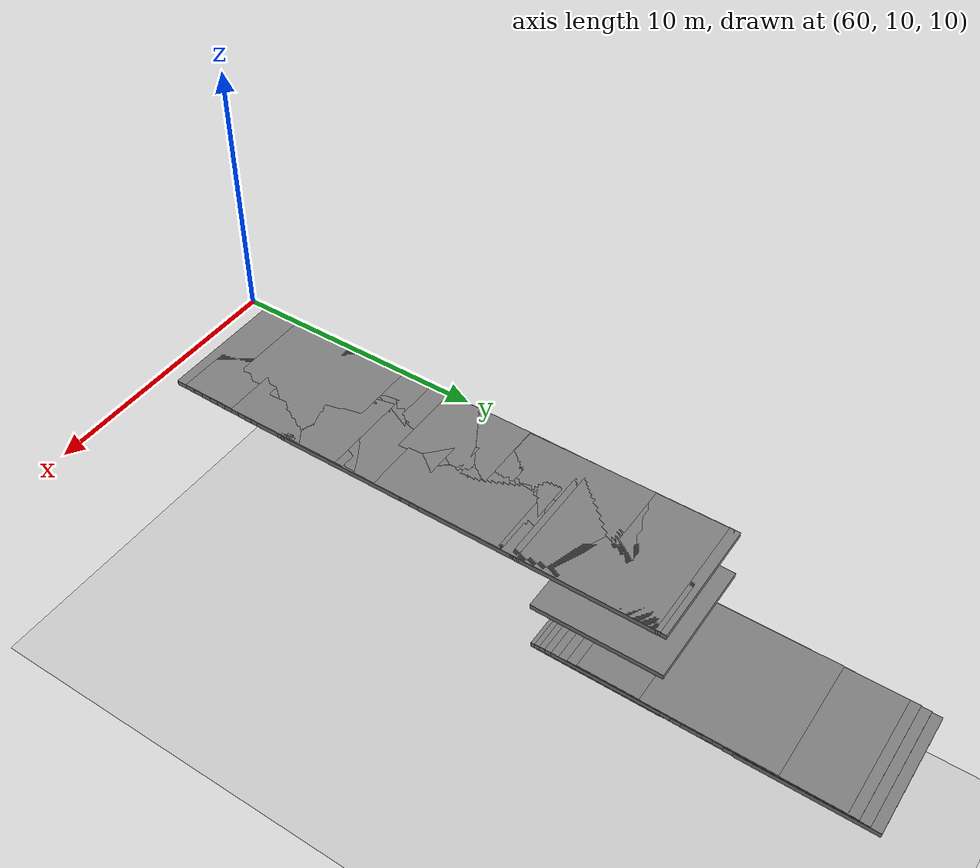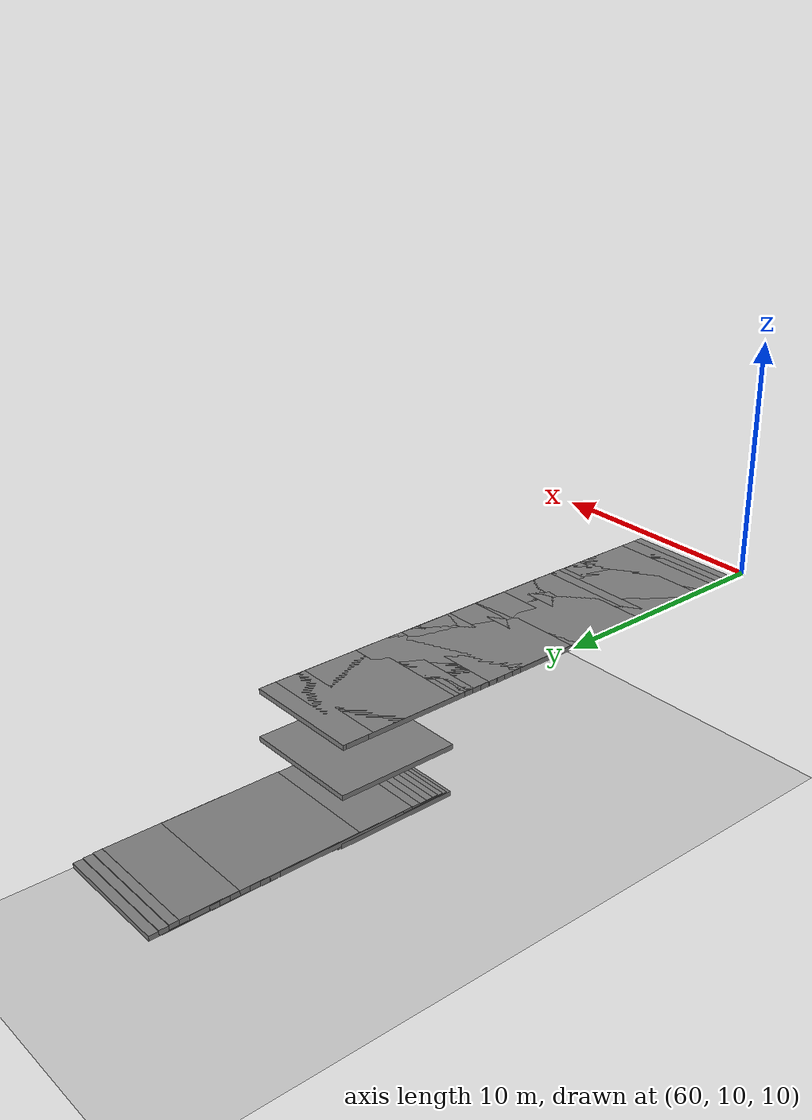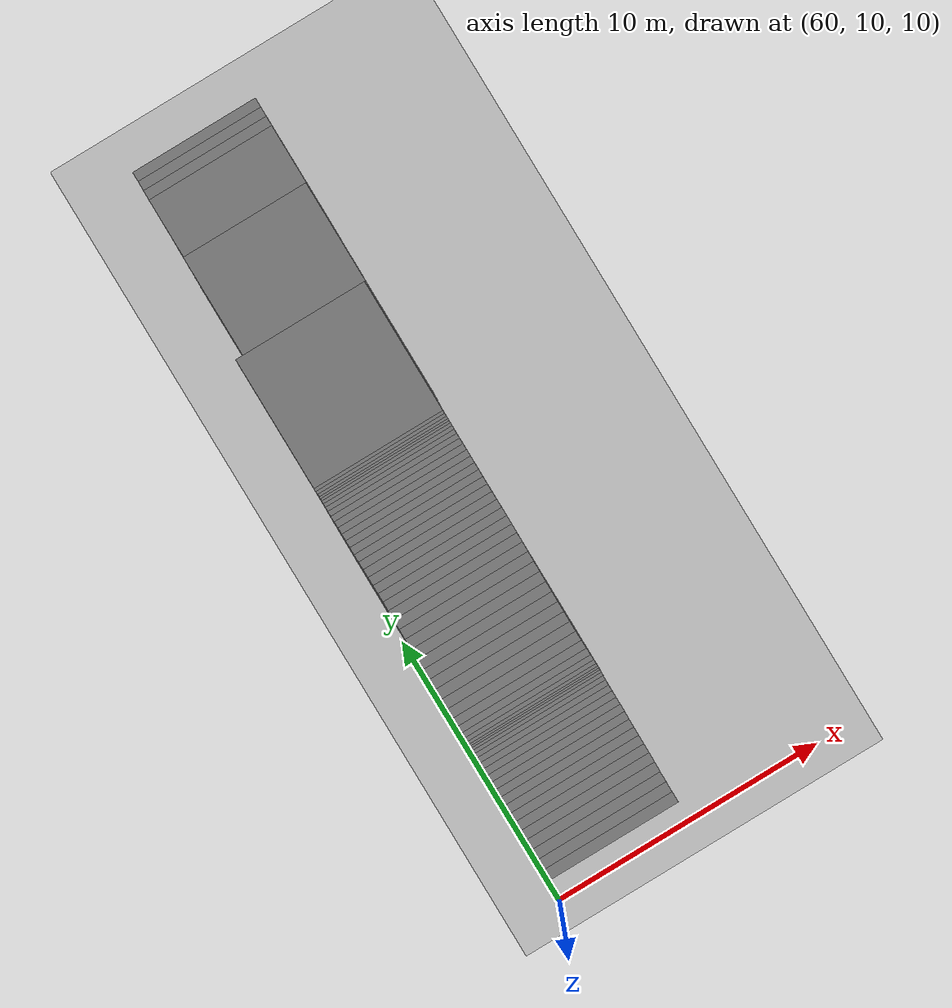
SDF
<sdf version="1.6">
 <world name="default">
  <include><uri>model://sun</uri></include>
  <include><uri>model://ground_plane</uri></include>
  <model name="road_segment_403">
   <static>true</static>
   <link name="link">
    <visual name="visual">
     <geometry><box><size>5.0 5.0 0.2</size></box></geometry>
     <material><ambient>0.5 0.5 0.5 1</ambient><diffuse>0.5 0.5 0.5 1</diffuse></material>
     <pose>62.696222600051314 36.22027457710089 6.080920352505025 0 0 0</pose>
    </visual>
    <collision name="collision">
     <geometry><box><size>5.0 5.0 0.2</size></box></geometry>
     <pose>62.696222600051314 36.22027457710089 6.080920352505025 0 0 0</pose>
    </collision>
   </link>
  </model>
  <model name="road_segment_404">
   <static>true</static>
   <link name="link">
    <visual name="visual">
     <geometry><box><size>5.0 5.0 0.2</size></box></geometry>
     <material><ambient>0.5 0.5 0.5 1</ambient><diffuse>0.5 0.5 0.5 1</diffuse></material>
     <pose>62.69449933366165 35.84456974748646 6.111365594293305 0 0 0</pose>
    </visual>
    <collision name="collision">
     <geometry><box><size>5.0 5.0 0.2</size></box></geometry>
     <pose>62.69449933366165 35.84456974748646 6.111365594293305 0 0 0</pose>
    </collision>
   </link>
  </model>
  <model name="road_segment_405">
   <static>true</static>
   <link name="link">
    <visual name="visual">
     <geometry><box><size>5.0 5.0 0.2</size></box></geometry>
     <material><ambient>0.5 0.5 0.5 1</ambient><diffuse>0.5 0.5 0.5 1</diffuse></material>
     <pose>62.69001884104202 35.469682111627336 6.141333887124067 0 0 0</pose>
    </visual>
    <collision name="collision">
     <geometry><box><size>5.0 5.0 0.2</size></box></geometry>
     <pose>62.69001884104202 35.469682111627336 6.141333887124067 0 0 0</pose>
    </collision>
   </link>
  </model>
  <model name="road_segment_406">
   <static>true</static>
   <link name="link">
    <visual name="visual">
     <geometry><box><size>5.0 5.0 0.2</size></box></geometry>
     <material><ambient>0.5 0.5 0.5 1</ambient><diffuse>0.5 0.5 0.5 1</diffuse></material>
     <pose>62.68484904185672 35.09254719294022 6.145686046361426 0 0 0</pose>
    </visual>
    <collision name="collision">
     <geometry><box><size>5.0 5.0 0.2</size></box></geometry>
     <pose>62.68484904185672 35.09254719294022 6.145686046361426 0 0 0</pose>
    </collision>
   </link>
  </model>
  <model name="road_segment_407">
   <static>true</static>
   <link name="link">
    <visual name="visual">
     <geometry><box><size>5.0 5.0 0.2</size></box></geometry>
     <material><ambient>0.5 0.5 0.5 1</ambient><diffuse>0.5 0.5 0.5 1</diffuse></material>
     <pose>62.68324065988651 34.71234779766618 6.130344188227905 0 0 0</pose>
    </visual>
    <collision name="collision">
     <geometry><box><size>5.0 5.0 0.2</size></box></geometry>
     <pose>62.68324065988651 34.71234779766618 6.130344188227905 0 0 0</pose>
    </collision>
   </link>
  </model>
  <model name="road_segment_408">
   <static>true</static>
   <link name="link">
    <visual name="visual">
     <geometry><box><size>5.0 5.0 0.2</size></box></geometry>
     <material><ambient>0.5 0.5 0.5 1</ambient><diffuse>0.5 0.5 0.5 1</diffuse></material>
     <pose>62.68335554432228 34.33010541799482 6.111077437631471 0 0 0</pose>
    </visual>
    <collision name="collision">
     <geometry><box><size>5.0 5.0 0.2</size></box></geometry>
     <pose>62.68335554432228 34.33010541799482 6.111077437631471 0 0 0</pose>
    </collision>
   </link>
  </model>
  <model name="road_segment_409">
   <static>true</static>
   <link name="link">
    <visual name="visual">
     <geometry><box><size>5.0 5.0 0.2</size></box></geometry>
     <material><ambient>0.5 0.5 0.5 1</ambient><diffuse>0.5 0.5 0.5 1</diffuse></material>
     <pose>62.680942971366974 33.946024352374934 6.11159413233545 0 0 0</pose>
    </visual>
    <collision name="collision">
     <geometry><box><size>5.0 5.0 0.2</size></box></geometry>
     <pose>62.680942971366974 33.946024352374934 6.11159413233545 0 0 0</pose>
    </collision>
   </link>
  </model>
  <model name="road_segment_410">
   <static>true</static>
   <link name="link">
    <visual name="visual">
     <geometry><box><size>5.0 5.0 0.2</size></box></geometry>
     <material><ambient>0.5 0.5 0.5 1</ambient><diffuse>0.5 0.5 0.5 1</diffuse></material>
     <pose>62.67531363447124 33.55867451173022 6.12519711406135 0 0 0</pose>
    </visual>
    <collision name="collision">
     <geometry><box><size>5.0 5.0 0.2</size></box></geometry>
     <pose>62.67531363447124 33.55867451173022 6.12519711406135 0 0 0</pose>
    </collision>
   </link>
  </model>
  <model name="road_segment_411">
   <static>true</static>
   <link name="link">
    <visual name="visual">
     <geometry><box><size>5.0 5.0 0.2</size></box></geometry>
     <material><ambient>0.5 0.5 0.5 1</ambient><diffuse>0.5 0.5 0.5 1</diffuse></material>
     <pose>62.67106291070682 33.16805589605339 6.133881559662837 0 0 0</pose>
    </visual>
    <collision name="collision">
     <geometry><box><size>5.0 5.0 0.2</size></box></geometry>
     <pose>62.67106291070682 33.16805589605339 6.133881559662837 0 0 0</pose>
    </collision>
   </link>
  </model>
  <model name="road_segment_412">
   <static>true</static>
   <link name="link">
    <visual name="visual">
     <geometry><box><size>5.0 5.0 0.2</size></box></geometry>
     <material><ambient>0.5 0.5 0.5 1</ambient><diffuse>0.5 0.5 0.5 1</diffuse></material>
     <pose>62.66922475988139 32.77314701315488 6.146063630952795 0 0 0</pose>
    </visual>
    <collision name="collision">
     <geometry><box><size>5.0 5.0 0.2</size></box></geometry>
     <pose>62.66922475988139 32.77314701315488 6.146063630952795 0 0 0</pose>
    </collision>
   </link>
  </model>
  <model name="road_segment_413">
   <static>true</static>
   <link name="link">
    <visual name="visual">
     <geometry><box><size>5.0 5.0 0.2</size></box></geometry>
     <material><ambient>0.5 0.5 0.5 1</ambient><diffuse>0.5 0.5 0.5 1</diffuse></material>
     <pose>62.66462938282598 32.37599084742838 6.13650477892919 0 0 0</pose>
    </visual>
    <collision name="collision">
     <geometry><box><size>5.0 5.0 0.2</size></box></geometry>
     <pose>62.66462938282598 32.37599084742838 6.13650477892919 0 0 0</pose>
    </collision>
   </link>
  </model>
  <model name="road_segment_414">
   <static>true</static>
   <link name="link">
    <visual name="visual">
     <geometry><box><size>5.0 5.0 0.2</size></box></geometry>
     <material><ambient>0.5 0.5 0.5 1</ambient><diffuse>0.5 0.5 0.5 1</diffuse></material>
     <pose>62.65670235742703 31.977404592629206 6.128217790792302 0 0 0</pose>
    </visual>
    <collision name="collision">
     <geometry><box><size>5.0 5.0 0.2</size></box></geometry>
     <pose>62.65670235742703 31.977404592629206 6.128217790792302 0 0 0</pose>
    </collision>
   </link>
  </model>
  <model name="road_segment_415">
   <static>true</static>
   <link name="link">
    <visual name="visual">
     <geometry><box><size>5.0 5.0 0.2</size></box></geometry>
     <material><ambient>0.5 0.5 0.5 1</ambient><diffuse>0.5 0.5 0.5 1</diffuse></material>
     <pose>62.64934975415797 31.580044128464788 6.131258340396483 0 0 0</pose>
    </visual>
    <collision name="collision">
     <geometry><box><size>5.0 5.0 0.2</size></box></geometry>
     <pose>62.64934975415797 31.580044128464788 6.131258340396483 0 0 0</pose>
    </collision>
   </link>
  </model>
  <model name="road_segment_416">
   <static>true</static>
   <link name="link">
    <visual name="visual">
     <geometry><box><size>5.0 5.0 0.2</size></box></geometry>
     <material><ambient>0.5 0.5 0.5 1</ambient><diffuse>0.5 0.5 0.5 1</diffuse></material>
     <pose>62.64670741234743 31.186156737763127 6.128804040552585 0 0 0</pose>
    </visual>
    <collision name="collision">
     <geometry><box><size>5.0 5.0 0.2</size></box></geometry>
     <pose>62.64670741234743 31.186156737763127 6.128804040552585 0 0 0</pose>
    </collision>
   </link>
  </model>
  <model name="road_segment_417">
   <static>true</static>
   <link name="link">
    <visual name="visual">
     <geometry><box><size>5.0 5.0 0.2</size></box></geometry>
     <material><ambient>0.5 0.5 0.5 1</ambient><diffuse>0.5 0.5 0.5 1</diffuse></material>
     <pose>62.64808602546242 30.789613467354016 6.1349845041270985 0 0 0</pose>
    </visual>
    <collision name="collision">
     <geometry><box><size>5.0 5.0 0.2</size></box></geometry>
     <pose>62.64808602546242 30.789613467354016 6.1349845041270985 0 0 0</pose>
    </collision>
   </link>
  </model>
  <model name="road_segment_418">
   <static>true</static>
   <link name="link">
    <visual name="visual">
     <geometry><box><size>5.0 5.0 0.2</size></box></geometry>
     <material><ambient>0.5 0.5 0.5 1</ambient><diffuse>0.5 0.5 0.5 1</diffuse></material>
     <pose>62.653715362358156 30.396134673531826 6.144950750051918 0 0 0</pose>
    </visual>
    <collision name="collision">
     <geometry><box><size>5.0 5.0 0.2</size></box></geometry>
     <pose>62.653715362358156 30.396134673531826 6.144950750051918 0 0 0</pose>
    </collision>
   </link>
  </model>
  <model name="road_segment_419">
   <static>true</static>
   <link name="link">
    <visual name="visual">
     <geometry><box><size>5.0 5.0 0.2</size></box></geometry>
     <material><ambient>0.5 0.5 0.5 1</ambient><diffuse>0.5 0.5 0.5 1</diffuse></material>
     <pose>62.661872156612326 30.028601781481306 6.135759546183067 0 0 0</pose>
    </visual>
    <collision name="collision">
     <geometry><box><size>5.0 5.0 0.2</size></box></geometry>
     <pose>62.661872156612326 30.028601781481306 6.135759546183067 0 0 0</pose>
    </collision>
   </link>
  </model>
  <model name="road_segment_420">
   <static>true</static>
   <link name="link">
    <visual name="visual">
     <geometry><box><size>5.0 5.0 0.2</size></box></geometry>
     <material><ambient>0.5 0.5 0.5 1</ambient><diffuse>0.5 0.5 0.5 1</diffuse></material>
     <pose>62.6678461467664 29.70192857726485 6.115350105375911 0 0 0</pose>
    </visual>
    <collision name="collision">
     <geometry><box><size>5.0 5.0 0.2</size></box></geometry>
     <pose>62.6678461467664 29.70192857726485 6.115350105375911 0 0 0</pose>
    </collision>
   </link>
  </model>
  <model name="road_segment_421">
   <static>true</static>
   <link name="link">
    <visual name="visual">
     <geometry><box><size>5.0 5.0 0.2</size></box></geometry>
     <material><ambient>0.5 0.5 0.5 1</ambient><diffuse>0.5 0.5 0.5 1</diffuse></material>
     <pose>62.67278617709647 29.412437688974528 6.114426016770718 0 0 0</pose>
    </visual>
    <collision name="collision">
     <geometry><box><size>5.0 5.0 0.2</size></box></geometry>
     <pose>62.67278617709647 29.412437688974528 6.114426016770718 0 0 0</pose>
    </collision>
   </link>
  </model>
  <model name="road_segment_422">
   <static>true</static>
   <link name="link">
    <visual name="visual">
     <geometry><box><size>5.0 5.0 0.2</size></box></geometry>
     <material><ambient>0.5 0.5 0.5 1</ambient><diffuse>0.5 0.5 0.5 1</diffuse></material>
     <pose>62.67232663940236 29.15992481817242 6.111107246941316 0 0 0</pose>
    </visual>
    <collision name="collision">
     <geometry><box><size>5.0 5.0 0.2</size></box></geometry>
     <pose>62.67232663940236 29.15992481817242 6.111107246941316 0 0 0</pose>
    </collision>
   </link>
  </model>
  <model name="road_segment_423">
   <static>true</static>
   <link name="link">
    <visual name="visual">
     <geometry><box><size>5.0 5.0 0.2</size></box></geometry>
     <material><ambient>0.5 0.5 0.5 1</ambient><diffuse>0.5 0.5 0.5 1</diffuse></material>
     <pose>62.662446578742205 28.94071259295422 6.091910051401188 0 0 0</pose>
    </visual>
    <collision name="collision">
     <geometry><box><size>5.0 5.0 0.2</size></box></geometry>
     <pose>62.662446578742205 28.94071259295422 6.091910051401188 0 0 0</pose>
    </collision>
   </link>
  </model>
  <model name="road_segment_424">
   <static>true</static>
   <link name="link">
    <visual name="visual">
     <geometry><box><size>5.0 5.0 0.2</size></box></geometry>
     <material><ambient>0.5 0.5 0.5 1</ambient><diffuse>0.5 0.5 0.5 1</diffuse></material>
     <pose>62.64854556315653 28.74887635858401 6.058603115867793 0 0 0</pose>
    </visual>
    <collision name="collision">
     <geometry><box><size>5.0 5.0 0.2</size></box></geometry>
     <pose>62.64854556315653 28.74887635858401 6.058603115867793 0 0 0</pose>
    </collision>
   </link>
  </model>
  <model name="road_segment_425">
   <static>true</static>
   <link name="link">
    <visual name="visual">
     <geometry><box><size>5.0 5.0 0.2</size></box></geometry>
     <material><ambient>0.5 0.5 0.5 1</ambient><diffuse>0.5 0.5 0.5 1</diffuse></material>
     <pose>62.640044115611374 28.59422244013993 6.027710734431839 0 0 0</pose>
    </visual>
    <collision name="collision">
     <geometry><box><size>5.0 5.0 0.2</size></box></geometry>
     <pose>62.640044115611374 28.59422244013993 6.027710734431839 0 0 0</pose>
    </collision>
   </link>
  </model>
  <model name="road_segment_426">
   <static>true</static>
   <link name="link">
    <visual name="visual">
     <geometry><box><size>5.0 5.0 0.2</size></box></geometry>
     <material><ambient>0.5 0.5 0.5 1</ambient><diffuse>0.5 0.5 0.5 1</diffuse></material>
     <pose>62.6359082762664 28.48124540328522 8.009836078605161 0 0 0</pose>
    </visual>
    <collision name="collision">
     <geometry><box><size>5.0 5.0 0.2</size></box></geometry>
     <pose>62.6359082762664 28.48124540328522 8.009836078605161 0 0 0</pose>
    </collision>
   </link>
  </model>
  <model name="road_segment_427">
   <static>true</static>
   <link name="link">
    <visual name="visual">
     <geometry><box><size>5.0 5.0 0.2</size></box></geometry>
     <material><ambient>0.5 0.5 0.5 1</ambient><diffuse>0.5 0.5 0.5 1</diffuse></material>
     <pose>62.629359863982444 28.379913377464433 10.0 0 0 0</pose>
    </visual>
    <collision name="collision">
     <geometry><box><size>5.0 5.0 0.2</size></box></geometry>
     <pose>62.629359863982444 28.379913377464433 10.0 0 0 0</pose>
    </collision>
   </link>
  </model>
  <model name="road_segment_428">
   <static>true</static>
   <link name="link">
    <visual name="visual">
     <geometry><box><size>5.0 5.0 0.2</size></box></geometry>
     <material><ambient>0.5 0.5 0.5 1</ambient><diffuse>0.5 0.5 0.5 1</diffuse></material>
     <pose>62.625453793492696 28.26714063904764 10.0 0 0 0</pose>
    </visual>
    <collision name="collision">
     <geometry><box><size>5.0 5.0 0.2</size></box></geometry>
     <pose>62.625453793492696 28.26714063904764 10.0 0 0 0</pose>
    </collision>
   </link>
  </model>
  <model name="road_segment_429">
   <static>true</static>
   <link name="link">
    <visual name="visual">
     <geometry><box><size>5.0 5.0 0.2</size></box></geometry>
     <material><ambient>0.5 0.5 0.5 1</ambient><diffuse>0.5 0.5 0.5 1</diffuse></material>
     <pose>62.62993428611233 28.1541636021893 10.0 0 0 0</pose>
    </visual>
    <collision name="collision">
     <geometry><box><size>5.0 5.0 0.2</size></box></geometry>
     <pose>62.62993428611233 28.1541636021893 10.0 0 0 0</pose>
    </collision>
   </link>
  </model>
  <model name="road_segment_430">
   <static>true</static>
   <link name="link">
    <visual name="visual">
     <geometry><box><size>5.0 5.0 0.2</size></box></geometry>
     <material><ambient>0.5 0.5 0.5 1</ambient><diffuse>0.5 0.5 0.5 1</diffuse></material>
     <pose>62.63636781397684 28.058551932662887 10.0 0 0 0</pose>
    </visual>
    <collision name="collision">
     <geometry><box><size>5.0 5.0 0.2</size></box></geometry>
     <pose>62.63636781397684 28.058551932662887 10.0 0 0 0</pose>
    </collision>
   </link>
  </model>
  <model name="road_segment_431">
   <static>true</static>
   <link name="link">
    <visual name="visual">
     <geometry><box><size>5.0 5.0 0.2</size></box></geometry>
     <material><ambient>0.5 0.5 0.5 1</ambient><diffuse>0.5 0.5 0.5 1</diffuse></material>
     <pose>62.63751665823661 27.981122824223704 10.0 0 0 0</pose>
    </visual>
    <collision name="collision">
     <geometry><box><size>5.0 5.0 0.2</size></box></geometry>
     <pose>62.63751665823661 27.981122824223704 10.0 0 0 0</pose>
    </collision>
   </link>
  </model>
  <model name="road_segment_432">
   <static>true</static>
   <link name="link">
    <visual name="visual">
     <geometry><box><size>5.0 5.0 0.2</size></box></geometry>
     <material><ambient>0.5 0.5 0.5 1</ambient><diffuse>0.5 0.5 0.5 1</diffuse></material>
     <pose>62.63602316070218 27.8965432704102 10.0 0 0 0</pose>
    </visual>
    <collision name="collision">
     <geometry><box><size>5.0 5.0 0.2</size></box></geometry>
     <pose>62.63602316070218 27.8965432704102 10.0 0 0 0</pose>
    </collision>
   </link>
  </model>
  <model name="road_segment_433">
   <static>true</static>
   <link name="link">
    <visual name="visual">
     <geometry><box><size>5.0 5.0 0.2</size></box></geometry>
     <material><ambient>0.5 0.5 0.5 1</ambient><diffuse>0.5 0.5 0.5 1</diffuse></material>
     <pose>62.63475943200663 27.787243605459793 10.0 0 0 0</pose>
    </visual>
    <collision name="collision">
     <geometry><box><size>5.0 5.0 0.2</size></box></geometry>
     <pose>62.63475943200663 27.787243605459793 10.0 0 0 0</pose>
    </collision>
   </link>
  </model>
  <model name="road_segment_434">
   <static>true</static>
   <link name="link">
    <visual name="visual">
     <geometry><box><size>5.0 5.0 0.2</size></box></geometry>
     <material><ambient>0.5 0.5 0.5 1</ambient><diffuse>0.5 0.5 0.5 1</diffuse></material>
     <pose>62.632691512325984 27.65301953093456 10.0 0 0 0</pose>
    </visual>
    <collision name="collision">
     <geometry><box><size>5.0 5.0 0.2</size></box></geometry>
     <pose>62.632691512325984 27.65301953093456 10.0 0 0 0</pose>
    </collision>
   </link>
  </model>
  <model name="road_segment_435">
   <static>true</static>
   <link name="link">
    <visual name="visual">
     <geometry><box><size>5.0 5.0 0.2</size></box></geometry>
     <material><ambient>0.5 0.5 0.5 1</ambient><diffuse>0.5 0.5 0.5 1</diffuse></material>
     <pose>62.629130095110895 27.49427964370671 10.0 0 0 0</pose>
    </visual>
    <collision name="collision">
     <geometry><box><size>5.0 5.0 0.2</size></box></geometry>
     <pose>62.629130095110895 27.49427964370671 10.0 0 0 0</pose>
    </collision>
   </link>
  </model>
  <model name="road_segment_436">
   <static>true</static>
   <link name="link">
    <visual name="visual">
     <geometry><box><size>5.0 5.0 0.2</size></box></geometry>
     <material><ambient>0.5 0.5 0.5 1</ambient><diffuse>0.5 0.5 0.5 1</diffuse></material>
     <pose>62.624534718071814 27.30775516875141 10.0 0 0 0</pose>
    </visual>
    <collision name="collision">
     <geometry><box><size>5.0 5.0 0.2</size></box></geometry>
     <pose>62.624534718071814 27.30775516875141 10.0 0 0 0</pose>
    </collision>
   </link>
  </model>
  <model name="road_segment_437">
   <static>true</static>
   <link name="link">
    <visual name="visual">
     <geometry><box><size>5.0 5.0 0.2</size></box></geometry>
     <material><ambient>0.5 0.5 0.5 1</ambient><diffuse>0.5 0.5 0.5 1</diffuse></material>
     <pose>62.625224024637475 27.093241807634364 10.0 0 0 0</pose>
    </visual>
    <collision name="collision">
     <geometry><box><size>5.0 5.0 0.2</size></box></geometry>
     <pose>62.625224024637475 27.093241807634364 10.0 0 0 0</pose>
    </collision>
   </link>
  </model>
  <model name="road_segment_438">
   <static>true</static>
   <link name="link">
    <visual name="visual">
     <geometry><box><size>5.0 5.0 0.2</size></box></geometry>
     <material><ambient>0.5 0.5 0.5 1</ambient><diffuse>0.5 0.5 0.5 1</diffuse></material>
     <pose>62.629819401676556 26.85952439323687 10.0 0 0 0</pose>
    </visual>
    <collision name="collision">
     <geometry><box><size>5.0 5.0 0.2</size></box></geometry>
     <pose>62.629819401676556 26.85952439323687 10.0 0 0 0</pose>
    </collision>
   </link>
  </model>
  <model name="road_segment_439">
   <static>true</static>
   <link name="link">
    <visual name="visual">
     <geometry><box><size>5.0 5.0 0.2</size></box></geometry>
     <material><ambient>0.5 0.5 0.5 1</ambient><diffuse>0.5 0.5 0.5 1</diffuse></material>
     <pose>62.63234685905131 26.613140475608603 10.0 0 0 0</pose>
    </visual>
    <collision name="collision">
     <geometry><box><size>5.0 5.0 0.2</size></box></geometry>
     <pose>62.63234685905131 26.613140475608603 10.0 0 0 0</pose>
    </collision>
   </link>
  </model>
  <model name="road_segment_440">
   <static>true</static>
   <link name="link">
    <visual name="visual">
     <geometry><box><size>5.0 5.0 0.2</size></box></geometry>
     <material><ambient>0.5 0.5 0.5 1</ambient><diffuse>0.5 0.5 0.5 1</diffuse></material>
     <pose>62.63108313037209 26.358176023536956 10.0 0 0 0</pose>
    </visual>
    <collision name="collision">
     <geometry><box><size>5.0 5.0 0.2</size></box></geometry>
     <pose>62.63108313037209 26.358176023536956 10.0 0 0 0</pose>
    </collision>
   </link>
  </model>
  <model name="road_segment_441">
   <static>true</static>
   <link name="link">
    <visual name="visual">
     <geometry><box><size>5.0 5.0 0.2</size></box></geometry>
     <material><ambient>0.5 0.5 0.5 1</ambient><diffuse>0.5 0.5 0.5 1</diffuse></material>
     <pose>62.62901521070777 26.093200947945622 10.0 0 0 0</pose>
    </visual>
    <collision name="collision">
     <geometry><box><size>5.0 5.0 0.2</size></box></geometry>
     <pose>62.62901521070777 26.093200947945622 10.0 0 0 0</pose>
    </collision>
   </link>
  </model>
  <model name="road_segment_442">
   <static>true</static>
   <link name="link">
    <visual name="visual">
     <geometry><box><size>5.0 5.0 0.2</size></box></geometry>
     <material><ambient>0.5 0.5 0.5 1</ambient><diffuse>0.5 0.5 0.5 1</diffuse></material>
     <pose>62.62763659759278 25.818010950396676 10.0 0 0 0</pose>
    </visual>
    <collision name="collision">
     <geometry><box><size>5.0 5.0 0.2</size></box></geometry>
     <pose>62.62763659759278 25.818010950396676 10.0 0 0 0</pose>
    </collision>
   </link>
  </model>
  <model name="road_segment_443">
   <static>true</static>
   <link name="link">
    <visual name="visual">
     <geometry><box><size>5.0 5.0 0.2</size></box></geometry>
     <material><ambient>0.5 0.5 0.5 1</ambient><diffuse>0.5 0.5 0.5 1</diffuse></material>
     <pose>62.62487937136281 25.53485331372174 10.0 0 0 0</pose>
    </visual>
    <collision name="collision">
     <geometry><box><size>5.0 5.0 0.2</size></box></geometry>
     <pose>62.62487937136281 25.53485331372174 10.0 0 0 0</pose>
    </collision>
   </link>
  </model>
  <model name="road_segment_444">
   <static>true</static>
   <link name="link">
    <visual name="visual">
     <geometry><box><size>5.0 5.0 0.2</size></box></geometry>
     <material><ambient>0.5 0.5 0.5 1</ambient><diffuse>0.5 0.5 0.5 1</diffuse></material>
     <pose>62.6251091402017 25.240663561330265 10.0 0 0 0</pose>
    </visual>
    <collision name="collision">
     <geometry><box><size>5.0 5.0 0.2</size></box></geometry>
     <pose>62.6251091402017 25.240663561330265 10.0 0 0 0</pose>
    </collision>
   </link>
  </model>
  <model name="road_segment_445">
   <static>true</static>
   <link name="link">
    <visual name="visual">
     <geometry><box><size>5.0 5.0 0.2</size></box></geometry>
     <material><ambient>0.5 0.5 0.5 1</ambient><diffuse>0.5 0.5 0.5 1</diffuse></material>
     <pose>62.629130095110895 24.93339870883581 10.0 0 0 0</pose>
    </visual>
    <collision name="collision">
     <geometry><box><size>5.0 5.0 0.2</size></box></geometry>
     <pose>62.629130095110895 24.93339870883581 10.0 0 0 0</pose>
    </collision>
   </link>
  </model>
  <model name="road_segment_446">
   <static>true</static>
   <link name="link">
    <visual name="visual">
     <geometry><box><size>5.0 5.0 0.2</size></box></geometry>
     <material><ambient>0.5 0.5 0.5 1</ambient><diffuse>0.5 0.5 0.5 1</diffuse></material>
     <pose>62.63188732134088 24.619596306288045 10.0 0 0 0</pose>
    </visual>
    <collision name="collision">
     <geometry><box><size>5.0 5.0 0.2</size></box></geometry>
     <pose>62.63188732134088 24.619596306288045 10.0 0 0 0</pose>
    </collision>
   </link>
  </model>
  <model name="road_segment_447">
   <static>true</static>
   <link name="link">
    <visual name="visual">
     <geometry><box><size>5.0 5.0 0.2</size></box></geometry>
     <material><ambient>0.5 0.5 0.5 1</ambient><diffuse>0.5 0.5 0.5 1</diffuse></material>
     <pose>62.63200220577666 24.30354662090504 10.0 0 0 0</pose>
    </visual>
    <collision name="collision">
     <geometry><box><size>5.0 5.0 0.2</size></box></geometry>
     <pose>62.63200220577666 24.30354662090504 10.0 0 0 0</pose>
    </collision>
   </link>
  </model>
  <model name="road_segment_448">
   <static>true</static>
   <link name="link">
    <visual name="visual">
     <geometry><box><size>5.0 5.0 0.2</size></box></geometry>
     <material><ambient>0.5 0.5 0.5 1</ambient><diffuse>0.5 0.5 0.5 1</diffuse></material>
     <pose>62.632691512342305 23.980959385472353 10.0 0 0 0</pose>
    </visual>
    <collision name="collision">
     <geometry><box><size>5.0 5.0 0.2</size></box></geometry>
     <pose>62.632691512342305 23.980959385472353 10.0 0 0 0</pose>
    </collision>
   </link>
  </model>
  <model name="road_segment_449">
   <static>true</static>
   <link name="link">
    <visual name="visual">
     <geometry><box><size>5.0 5.0 0.2</size></box></geometry>
     <material><ambient>0.5 0.5 0.5 1</ambient><diffuse>0.5 0.5 0.5 1</diffuse></material>
     <pose>62.63177243692143 23.643662662418823 10.0 0 0 0</pose>
    </visual>
    <collision name="collision">
     <geometry><box><size>5.0 5.0 0.2</size></box></geometry>
     <pose>62.63177243692143 23.643662662418823 10.0 0 0 0</pose>
    </collision>
   </link>
  </model>
  <model name="road_segment_450">
   <static>true</static>
   <link name="link">
    <visual name="visual">
     <geometry><box><size>5.0 5.0 0.2</size></box></geometry>
     <material><ambient>0.5 0.5 0.5 1</ambient><diffuse>0.5 0.5 0.5 1</diffuse></material>
     <pose>62.62614310004202 23.2898177657923 10.0 0 0 0</pose>
    </visual>
    <collision name="collision">
     <geometry><box><size>5.0 5.0 0.2</size></box></geometry>
     <pose>62.62614310004202 23.2898177657923 10.0 0 0 0</pose>
    </collision>
   </link>
  </model>
  <model name="road_segment_451">
   <static>true</static>
   <link name="link">
    <visual name="visual">
     <geometry><box><size>5.0 5.0 0.2</size></box></geometry>
     <material><ambient>0.5 0.5 0.5 1</ambient><diffuse>0.5 0.5 0.5 1</diffuse></material>
     <pose>62.61982445659696 22.923510664380174 10.0 0 0 0</pose>
    </visual>
    <collision name="collision">
     <geometry><box><size>5.0 5.0 0.2</size></box></geometry>
     <pose>62.61982445659696 22.923510664380174 10.0 0 0 0</pose>
    </collision>
   </link>
  </model>
  <model name="road_segment_452">
   <static>true</static>
   <link name="link">
    <visual name="visual">
     <geometry><box><size>5.0 5.0 0.2</size></box></geometry>
     <material><ambient>0.5 0.5 0.5 1</ambient><diffuse>0.5 0.5 0.5 1</diffuse></material>
     <pose>62.615343963960996 22.54351556754406 10.0 0 0 0</pose>
    </visual>
    <collision name="collision">
     <geometry><box><size>5.0 5.0 0.2</size></box></geometry>
     <pose>62.615343963960996 22.54351556754406 10.0 0 0 0</pose>
    </collision>
   </link>
  </model>
  <model name="road_segment_453">
   <static>true</static>
   <link name="link">
    <visual name="visual">
     <geometry><box><size>5.0 5.0 0.2</size></box></geometry>
     <material><ambient>0.5 0.5 0.5 1</ambient><diffuse>0.5 0.5 0.5 1</diffuse></material>
     <pose>62.610289049211474 22.15575713001987 10.0 0 0 0</pose>
    </visual>
    <collision name="collision">
     <geometry><box><size>5.0 5.0 0.2</size></box></geometry>
     <pose>62.610289049211474 22.15575713001987 10.0 0 0 0</pose>
    </collision>
   </link>
  </model>
  <model name="road_segment_454">
   <static>true</static>
   <link name="link">
    <visual name="visual">
     <geometry><box><size>5.0 5.0 0.2</size></box></geometry>
     <material><ambient>0.5 0.5 0.5 1</ambient><diffuse>0.5 0.5 0.5 1</diffuse></material>
     <pose>62.606497863141165 21.76738579717467 10.0 0 0 0</pose>
    </visual>
    <collision name="collision">
     <geometry><box><size>5.0 5.0 0.2</size></box></geometry>
     <pose>62.606497863141165 21.76738579717467 10.0 0 0 0</pose>
    </collision>
   </link>
  </model>
  <model name="road_segment_455">
   <static>true</static>
   <link name="link">
    <visual name="visual">
     <geometry><box><size>5.0 5.0 0.2</size></box></geometry>
     <material><ambient>0.5 0.5 0.5 1</ambient><diffuse>0.5 0.5 0.5 1</diffuse></material>
     <pose>62.603970405766404 21.379014464329465 10.0 0 0 0</pose>
    </visual>
    <collision name="collision">
     <geometry><box><size>5.0 5.0 0.2</size></box></geometry>
     <pose>62.603970405766404 21.379014464329465 10.0 0 0 0</pose>
    </collision>
   </link>
  </model>
  <model name="road_segment_456">
   <static>true</static>
   <link name="link">
    <visual name="visual">
     <geometry><box><size>5.0 5.0 0.2</size></box></geometry>
     <material><ambient>0.5 0.5 0.5 1</ambient><diffuse>0.5 0.5 0.5 1</diffuse></material>
     <pose>62.60040898855132 20.991051728367356 10.0 0 0 0</pose>
    </visual>
    <collision name="collision">
     <geometry><box><size>5.0 5.0 0.2</size></box></geometry>
     <pose>62.60040898855132 20.991051728367356 10.0 0 0 0</pose>
    </collision>
   </link>
  </model>
  <model name="road_segment_457">
   <static>true</static>
   <link name="link">
    <visual name="visual">
     <geometry><box><size>5.0 5.0 0.2</size></box></geometry>
     <material><ambient>0.5 0.5 0.5 1</ambient><diffuse>0.5 0.5 0.5 1</diffuse></material>
     <pose>62.59719222461091 20.605540573674784 10.0 0 0 0</pose>
    </visual>
    <collision name="collision">
     <geometry><box><size>5.0 5.0 0.2</size></box></geometry>
     <pose>62.59719222461091 20.605540573674784 10.0 0 0 0</pose>
    </collision>
   </link>
  </model>
  <model name="road_segment_458">
   <static>true</static>
   <link name="link">
    <visual name="visual">
     <geometry><box><size>5.0 5.0 0.2</size></box></geometry>
     <material><ambient>0.5 0.5 0.5 1</ambient><diffuse>0.5 0.5 0.5 1</diffuse></material>
     <pose>62.596043380351134 20.22125520961335 10.0 0 0 0</pose>
    </visual>
    <collision name="collision">
     <geometry><box><size>5.0 5.0 0.2</size></box></geometry>
     <pose>62.596043380351134 20.22125520961335 10.0 0 0 0</pose>
    </collision>
   </link>
  </model>
  <model name="road_segment_459">
   <static>true</static>
   <link name="link">
    <visual name="visual">
     <geometry><box><size>5.0 5.0 0.2</size></box></geometry>
     <material><ambient>0.5 0.5 0.5 1</ambient><diffuse>0.5 0.5 0.5 1</diffuse></material>
     <pose>62.596502918061574 19.84289450028784 10.0 0 0 0</pose>
    </visual>
    <collision name="collision">
     <geometry><box><size>5.0 5.0 0.2</size></box></geometry>
     <pose>62.596502918061574 19.84289450028784 10.0 0 0 0</pose>
    </collision>
   </link>
  </model>
  <model name="road_segment_460">
   <static>true</static>
   <link name="link">
    <visual name="visual">
     <geometry><box><size>5.0 5.0 0.2</size></box></geometry>
     <material><ambient>0.5 0.5 0.5 1</ambient><diffuse>0.5 0.5 0.5 1</diffuse></material>
     <pose>62.59903037545266 19.48802811146809 10.0 0 0 0</pose>
    </visual>
    <collision name="collision">
     <geometry><box><size>5.0 5.0 0.2</size></box></geometry>
     <pose>62.59903037545266 19.48802811146809 10.0 0 0 0</pose>
    </collision>
   </link>
  </model>
  <model name="road_segment_461">
   <static>true</static>
   <link name="link">
    <visual name="visual">
     <geometry><box><size>5.0 5.0 0.2</size></box></geometry>
     <material><ambient>0.5 0.5 0.5 1</ambient><diffuse>0.5 0.5 0.5 1</diffuse></material>
     <pose>62.605923441027606 19.175451499555095 10.0 0 0 0</pose>
    </visual>
    <collision name="collision">
     <geometry><box><size>5.0 5.0 0.2</size></box></geometry>
     <pose>62.605923441027606 19.175451499555095 10.0 0 0 0</pose>
    </collision>
   </link>
  </model>
  <model name="road_segment_462">
   <static>true</static>
   <link name="link">
    <visual name="visual">
     <geometry><box><size>5.0 5.0 0.2</size></box></geometry>
     <material><ambient>0.5 0.5 0.5 1</ambient><diffuse>0.5 0.5 0.5 1</diffuse></material>
     <pose>62.612586737747336 18.921099942800836 10.0 0 0 0</pose>
    </visual>
    <collision name="collision">
     <geometry><box><size>5.0 5.0 0.2</size></box></geometry>
     <pose>62.612586737747336 18.921099942800836 10.0 0 0 0</pose>
    </collision>
   </link>
  </model>
  <model name="road_segment_463">
   <static>true</static>
   <link name="link">
    <visual name="visual">
     <geometry><box><size>5.0 5.0 0.2</size></box></geometry>
     <material><ambient>0.5 0.5 0.5 1</ambient><diffuse>0.5 0.5 0.5 1</diffuse></material>
     <pose>62.615918386107204 18.725994933402156 10.0 0 0 0</pose>
    </visual>
    <collision name="collision">
     <geometry><box><size>5.0 5.0 0.2</size></box></geometry>
     <pose>62.615918386107204 18.725994933402156 10.0 0 0 0</pose>
    </collision>
   </link>
  </model>
  <model name="road_segment_464">
   <static>true</static>
   <link name="link">
    <visual name="visual">
     <geometry><box><size>5.0 5.0 0.2</size></box></geometry>
     <material><ambient>0.5 0.5 0.5 1</ambient><diffuse>0.5 0.5 0.5 1</diffuse></material>
     <pose>62.618445843481965 18.57828716188722 10.0 0 0 0</pose>
    </visual>
    <collision name="collision">
     <geometry><box><size>5.0 5.0 0.2</size></box></geometry>
     <pose>62.618445843481965 18.57828716188722 10.0 0 0 0</pose>
    </collision>
   </link>
  </model>
  <model name="road_segment_465">
   <static>true</static>
   <link name="link">
    <visual name="visual">
     <geometry><box><size>5.0 5.0 0.2</size></box></geometry>
     <material><ambient>0.5 0.5 0.5 1</ambient><diffuse>0.5 0.5 0.5 1</diffuse></material>
     <pose>62.62005422545218 18.473890659475884 10.0 0 0 0</pose>
    </visual>
    <collision name="collision">
     <geometry><box><size>5.0 5.0 0.2</size></box></geometry>
     <pose>62.62005422545218 18.473890659475884 10.0 0 0 0</pose>
    </collision>
   </link>
  </model>
  <model name="road_segment_466">
   <static>true</static>
   <link name="link">
    <visual name="visual">
     <geometry><box><size>5.0 5.0 0.2</size></box></geometry>
     <material><ambient>0.5 0.5 0.5 1</ambient><diffuse>0.5 0.5 0.5 1</diffuse></material>
     <pose>62.6210881852925 18.400751818258392 10.0 0 0 0</pose>
    </visual>
    <collision name="collision">
     <geometry><box><size>5.0 5.0 0.2</size></box></geometry>
     <pose>62.6210881852925 18.400751818258392 10.0 0 0 0</pose>
    </collision>
   </link>
  </model>
  <model name="road_segment_467">
   <static>true</static>
   <link name="link">
    <visual name="visual">
     <geometry><box><size>5.0 5.0 0.2</size></box></geometry>
     <material><ambient>0.5 0.5 0.5 1</ambient><diffuse>0.5 0.5 0.5 1</diffuse></material>
     <pose>62.624534718071814 18.329655961430966 10.0 0 0 0</pose>
    </visual>
    <collision name="collision">
     <geometry><box><size>5.0 5.0 0.2</size></box></geometry>
     <pose>62.624534718071814 18.329655961430966 10.0 0 0 0</pose>
    </collision>
   </link>
  </model>
  <model name="road_segment_468">
   <static>true</static>
   <link name="link">
    <visual name="visual">
     <geometry><box><size>5.0 5.0 0.2</size></box></geometry>
     <material><ambient>0.5 0.5 0.5 1</ambient><diffuse>0.5 0.5 0.5 1</diffuse></material>
     <pose>62.62602821560625 18.236904470053553 10.0 0 0 0</pose>
    </visual>
    <collision name="collision">
     <geometry><box><size>5.0 5.0 0.2</size></box></geometry>
     <pose>62.62602821560625 18.236904470053553 10.0 0 0 0</pose>
    </collision>
   </link>
  </model>
  <model name="road_segment_469">
   <static>true</static>
   <link name="link">
    <visual name="visual">
     <geometry><box><size>5.0 5.0 0.2</size></box></geometry>
     <material><ambient>0.5 0.5 0.5 1</ambient><diffuse>0.5 0.5 0.5 1</diffuse></material>
     <pose>62.61879049675663 18.112078123727 10.0 0 0 0</pose>
    </visual>
    <collision name="collision">
     <geometry><box><size>5.0 5.0 0.2</size></box></geometry>
     <pose>62.61879049675663 18.112078123727 10.0 0 0 0</pose>
    </collision>
   </link>
  </model>
  <model name="road_segment_470">
   <static>true</static>
   <link name="link">
    <visual name="visual">
     <geometry><box><size>5.0 5.0 0.2</size></box></geometry>
     <material><ambient>0.5 0.5 0.5 1</ambient><diffuse>0.5 0.5 0.5 1</diffuse></material>
     <pose>62.60810624511138 17.950682356788068 10.0 0 0 0</pose>
    </visual>
    <collision name="collision">
     <geometry><box><size>5.0 5.0 0.2</size></box></geometry>
     <pose>62.60810624511138 17.950682356788068 10.0 0 0 0</pose>
    </collision>
   </link>
  </model>
  <model name="road_segment_471">
   <static>true</static>
   <link name="link">
    <visual name="visual">
     <geometry><box><size>5.0 5.0 0.2</size></box></geometry>
     <material><ambient>0.5 0.5 0.5 1</ambient><diffuse>0.5 0.5 0.5 1</diffuse></material>
     <pose>62.601098295100655 17.75373866143724 10.0 0 0 0</pose>
    </visual>
    <collision name="collision">
     <geometry><box><size>5.0 5.0 0.2</size></box></geometry>
     <pose>62.601098295100655 17.75373866143724 10.0 0 0 0</pose>
    </collision>
   </link>
  </model>
  <model name="road_segment_472">
   <static>true</static>
   <link name="link">
    <visual name="visual">
     <geometry><box><size>5.0 5.0 0.2</size></box></geometry>
     <material><ambient>0.5 0.5 0.5 1</ambient><diffuse>0.5 0.5 0.5 1</diffuse></material>
     <pose>62.59880060658111 17.527988886165737 10.0 0 0 0</pose>
    </visual>
    <collision name="collision">
     <geometry><box><size>5.0 5.0 0.2</size></box></geometry>
     <pose>62.59880060658111 17.527988886165737 10.0 0 0 0</pose>
    </collision>
   </link>
  </model>
  <model name="road_segment_473">
   <static>true</static>
   <link name="link">
    <visual name="visual">
     <geometry><box><size>5.0 5.0 0.2</size></box></geometry>
     <material><ambient>0.5 0.5 0.5 1</ambient><diffuse>0.5 0.5 0.5 1</diffuse></material>
     <pose>62.60098341068121 17.278744790392093 10.0 0 0 0</pose>
    </visual>
    <collision name="collision">
     <geometry><box><size>5.0 5.0 0.2</size></box></geometry>
     <pose>62.60098341068121 17.278744790392093 10.0 0 0 0</pose>
    </collision>
   </link>
  </model>
  <model name="road_segment_474">
   <static>true</static>
   <link name="link">
    <visual name="visual">
     <geometry><box><size>5.0 5.0 0.2</size></box></geometry>
     <material><ambient>0.5 0.5 0.5 1</ambient><diffuse>0.5 0.5 0.5 1</diffuse></material>
     <pose>62.60339598363652 17.011113835093305 10.0 0 0 0</pose>
    </visual>
    <collision name="collision">
     <geometry><box><size>5.0 5.0 0.2</size></box></geometry>
     <pose>62.60339598363652 17.011113835093305 10.0 0 0 0</pose>
    </collision>
   </link>
  </model>
  <model name="road_segment_475">
   <static>true</static>
   <link name="link">
    <visual name="visual">
     <geometry><box><size>5.0 5.0 0.2</size></box></geometry>
     <material><ambient>0.5 0.5 0.5 1</ambient><diffuse>0.5 0.5 0.5 1</diffuse></material>
     <pose>62.602936445942404 16.728364795294205 10.0 0 0 0</pose>
    </visual>
    <collision name="collision">
     <geometry><box><size>5.0 5.0 0.2</size></box></geometry>
     <pose>62.602936445942404 16.728364795294205 10.0 0 0 0</pose>
    </collision>
   </link>
  </model>
  <model name="road_segment_476">
   <static>true</static>
   <link name="link">
    <visual name="visual">
     <geometry><box><size>5.0 5.0 0.2</size></box></geometry>
     <material><ambient>0.5 0.5 0.5 1</ambient><diffuse>0.5 0.5 0.5 1</diffuse></material>
     <pose>62.59983456642143 16.43315355070951 10.0 0 0 0</pose>
    </visual>
    <collision name="collision">
     <geometry><box><size>5.0 5.0 0.2</size></box></geometry>
     <pose>62.59983456642143 16.43315355070951 10.0 0 0 0</pose>
    </collision>
   </link>
  </model>
  <model name="road_segment_477">
   <static>true</static>
   <link name="link">
    <visual name="visual">
     <geometry><box><size>5.0 5.0 0.2</size></box></geometry>
     <material><ambient>0.5 0.5 0.5 1</ambient><diffuse>0.5 0.5 0.5 1</diffuse></material>
     <pose>62.593286154121145 16.127727384167205 10.0 0 0 0</pose>
    </visual>
    <collision name="collision">
     <geometry><box><size>5.0 5.0 0.2</size></box></geometry>
     <pose>62.593286154121145 16.127727384167205 10.0 0 0 0</pose>
    </collision>
   </link>
  </model>
  <model name="road_segment_478">
   <static>true</static>
   <link name="link">
    <visual name="visual">
     <geometry><box><size>5.0 5.0 0.2</size></box></geometry>
     <material><ambient>0.5 0.5 0.5 1</ambient><diffuse>0.5 0.5 0.5 1</diffuse></material>
     <pose>62.58857589264629 15.810860505028892 10.0 0 0 0</pose>
    </visual>
    <collision name="collision">
     <geometry><box><size>5.0 5.0 0.2</size></box></geometry>
     <pose>62.58857589264629 15.810860505028892 10.0 0 0 0</pose>
    </collision>
   </link>
  </model>
  <model name="road_segment_479">
   <static>true</static>
   <link name="link">
    <visual name="visual">
     <geometry><box><size>5.0 5.0 0.2</size></box></geometry>
     <material><ambient>0.5 0.5 0.5 1</ambient><diffuse>0.5 0.5 0.5 1</diffuse></material>
     <pose>62.588461008226844 15.482348614856658 10.0 0 0 0</pose>
    </visual>
    <collision name="collision">
     <geometry><box><size>5.0 5.0 0.2</size></box></geometry>
     <pose>62.588461008226844 15.482348614856658 10.0 0 0 0</pose>
    </collision>
   </link>
  </model>
  <model name="road_segment_480">
   <static>true</static>
   <link name="link">
    <visual name="visual">
     <geometry><box><size>5.0 5.0 0.2</size></box></geometry>
     <material><ambient>0.5 0.5 0.5 1</ambient><diffuse>0.5 0.5 0.5 1</diffuse></material>
     <pose>62.58708239511185 15.139535833946674 10.0 0 0 0</pose>
    </visual>
    <collision name="collision">
     <geometry><box><size>5.0 5.0 0.2</size></box></geometry>
     <pose>62.58708239511185 15.139535833946674 10.0 0 0 0</pose>
    </collision>
   </link>
  </model>
  <model name="road_segment_481">
   <static>true</static>
   <link name="link">
    <visual name="visual">
     <geometry><box><size>5.0 5.0 0.2</size></box></geometry>
     <material><ambient>0.5 0.5 0.5 1</ambient><diffuse>0.5 0.5 0.5 1</diffuse></material>
     <pose>62.583865631171435 14.781196371660542 10.0 0 0 0</pose>
    </visual>
    <collision name="collision">
     <geometry><box><size>5.0 5.0 0.2</size></box></geometry>
     <pose>62.583865631171435 14.781196371660542 10.0 0 0 0</pose>
    </collision>
   </link>
  </model>
  <model name="road_segment_482">
   <static>true</static>
   <link name="link">
    <visual name="visual">
     <geometry><box><size>5.0 5.0 0.2</size></box></geometry>
     <material><ambient>0.5 0.5 0.5 1</ambient><diffuse>0.5 0.5 0.5 1</diffuse></material>
     <pose>62.57708745003226 14.40876031707095 10.0 0 0 0</pose>
    </visual>
    <collision name="collision">
     <geometry><box><size>5.0 5.0 0.2</size></box></geometry>
     <pose>62.57708745003226 14.40876031707095 10.0 0 0 0</pose>
    </collision>
   </link>
  </model>
  <model name="road_segment_483">
   <static>true</static>
   <link name="link">
    <visual name="visual">
     <geometry><box><size>5.0 5.0 0.2</size></box></geometry>
     <material><ambient>0.5 0.5 0.5 1</ambient><diffuse>0.5 0.5 0.5 1</diffuse></material>
     <pose>62.56916042461698 14.025087848330529 10.0 0 0 0</pose>
    </visual>
    <collision name="collision">
     <geometry><box><size>5.0 5.0 0.2</size></box></geometry>
     <pose>62.56916042461698 14.025087848330529 10.0 0 0 0</pose>
    </collision>
   </link>
  </model>
  <model name="road_segment_484">
   <static>true</static>
   <link name="link">
    <visual name="visual">
     <geometry><box><size>5.0 5.0 0.2</size></box></geometry>
     <material><ambient>0.5 0.5 0.5 1</ambient><diffuse>0.5 0.5 0.5 1</diffuse></material>
     <pose>62.565484122966126 13.63528642641264 10.0 0 0 0</pose>
    </visual>
    <collision name="collision">
     <geometry><box><size>5.0 5.0 0.2</size></box></geometry>
     <pose>62.565484122966126 13.63528642641264 10.0 0 0 0</pose>
    </collision>
   </link>
  </model>
  <model name="road_segment_485">
   <static>true</static>
   <link name="link">
    <visual name="visual">
     <geometry><box><size>5.0 5.0 0.2</size></box></geometry>
     <material><ambient>0.5 0.5 0.5 1</ambient><diffuse>0.5 0.5 0.5 1</diffuse></material>
     <pose>62.56513946969146 13.23240990438814 10.0 0 0 0</pose>
    </visual>
    <collision name="collision">
     <geometry><box><size>5.0 5.0 0.2</size></box></geometry>
     <pose>62.56513946969146 13.23240990438814 10.0 0 0 0</pose>
    </collision>
   </link>
  </model>
 </world>
</sdf>
